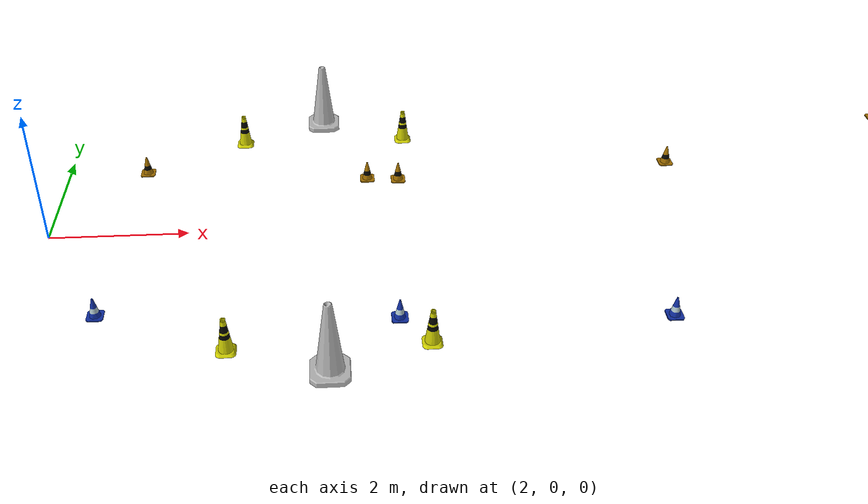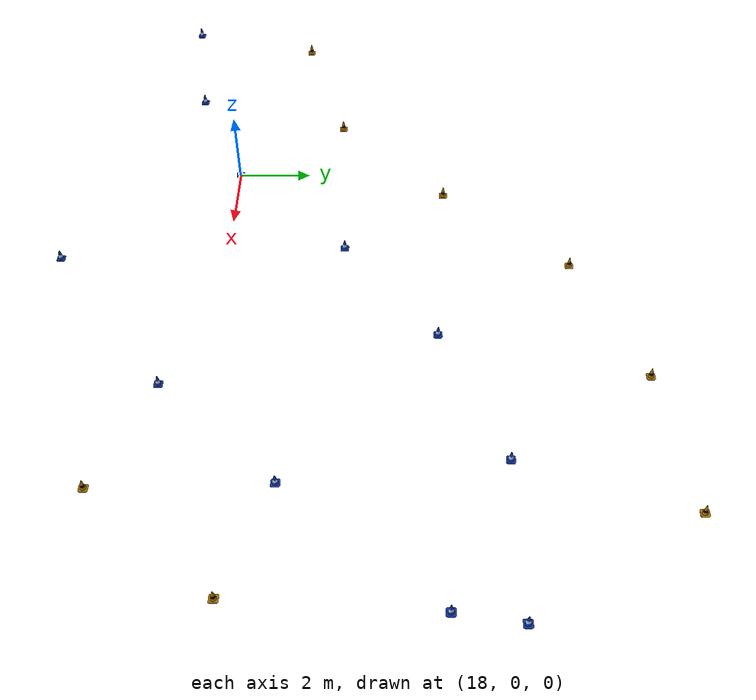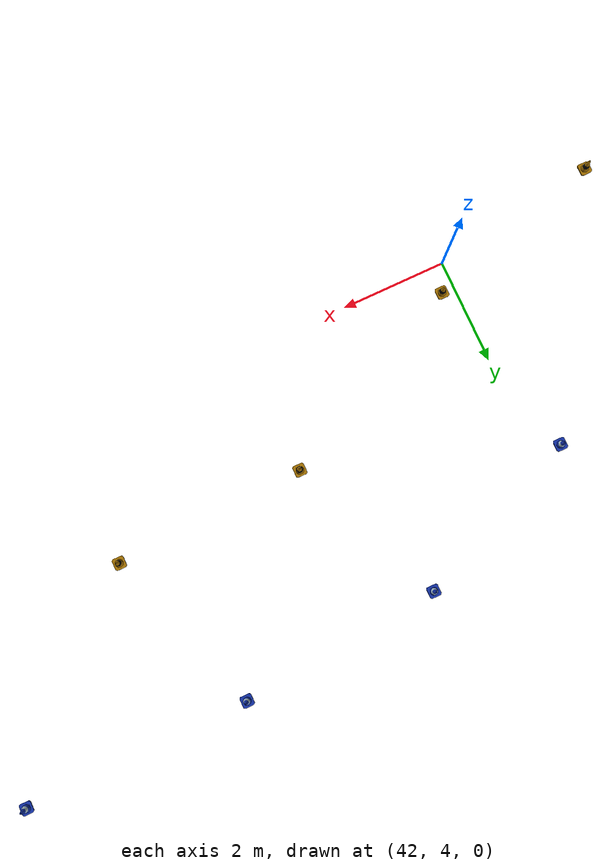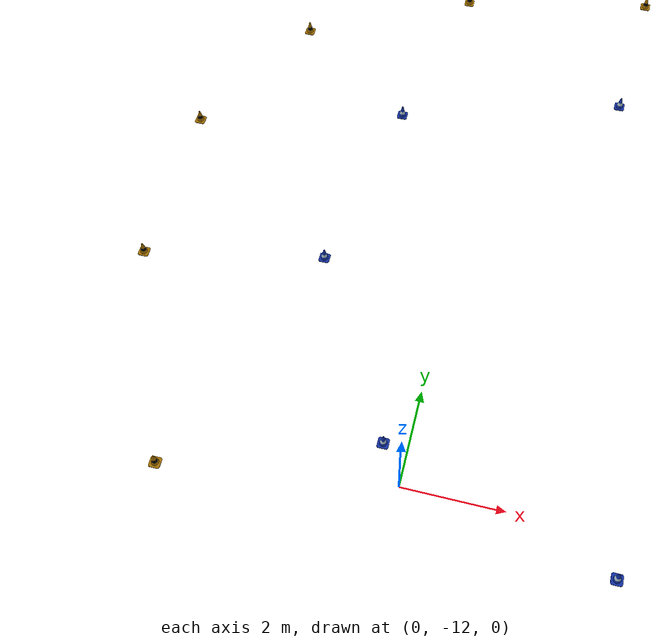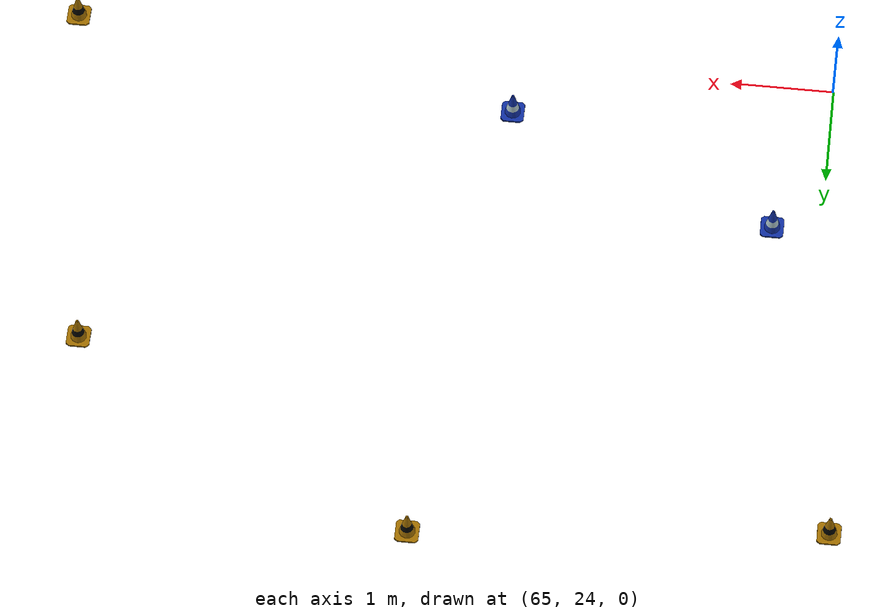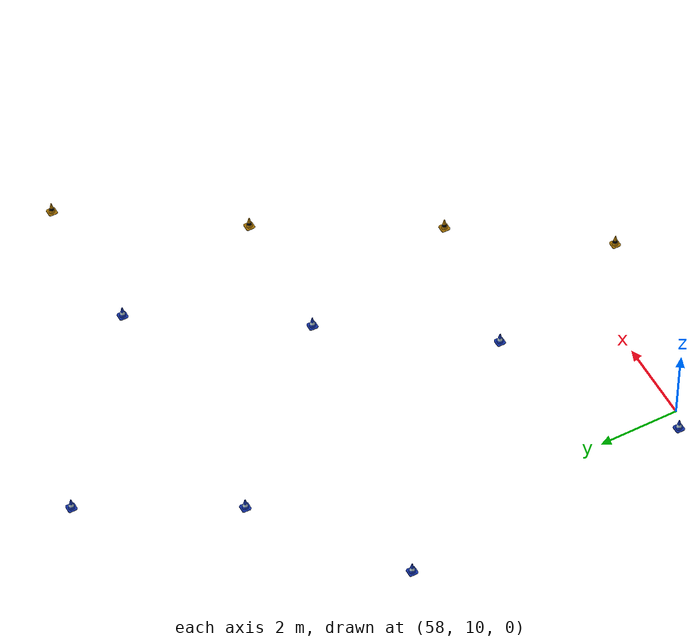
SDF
<?xml version='1.0' encoding='UTF-8'?>
<sdf version="1.4">
  <model name="some track">
    <include>
      <uri>model://fssim_gazebo/models/cone_blue</uri>
      <pose>2.90659856796 -1.59539604187 0 0 0 0</pose>
      <name>cone_right</name>
    </include>
    <include>
      <uri>model://fssim_gazebo/models/cone_blue</uri>
      <pose>6.93542385101 -1.87040793896 0 0 0 0</pose>
      <name>cone_right</name>
    </include>
    <include>
      <uri>model://fssim_gazebo/models/cone_blue</uri>
      <pose>10.5788793564 -2.04429888725 0 0 0 0</pose>
      <name>cone_right</name>
    </include>
    <include>
      <uri>model://fssim_gazebo/models/cone_blue</uri>
      <pose>14.2999448776 -1.4896812439 0 0 0 0</pose>
      <name>cone_right</name>
    </include>
    <include>
      <uri>model://fssim_gazebo/models/cone_blue</uri>
      <pose>17.8047637939 -0.0349008776248 0 0 0 0</pose>
      <name>cone_right</name>
    </include>
    <include>
      <uri>model://fssim_gazebo/models/cone_blue</uri>
      <pose>20.9232177734 3.14190459251 0 0 0 0</pose>
      <name>cone_right</name>
    </include>
    <include>
      <uri>model://fssim_gazebo/models/cone_blue</uri>
      <pose>24.1317501068 5.6552772522 0 0 0 0</pose>
      <name>cone_right</name>
    </include>
    <include>
      <uri>model://fssim_gazebo/models/cone_blue</uri>
      <pose>28.068151474 7.29581642151 0 0 0 0</pose>
      <name>cone_right</name>
    </include>
    <include>
      <uri>model://fssim_gazebo/models/cone_blue</uri>
      <pose>32.2912788391 7.40838336945 0 0 0 0</pose>
      <name>cone_right</name>
    </include>
    <include>
      <uri>model://fssim_gazebo/models/cone_blue</uri>
      <pose>35.0990066528 9.20966053009 0 0 0 0</pose>
      <name>cone_right</name>
    </include>
    <include>
      <uri>model://fssim_gazebo/models/cone_blue</uri>
      <pose>35.7737426758 11.7703428268 0 0 0 0</pose>
      <name>cone_right</name>
    </include>
    <include>
      <uri>model://fssim_gazebo/models/cone_blue</uri>
      <pose>36.224281311 13.8519067764 0 0 0 0</pose>
      <name>cone_right</name>
    </include>
    <include>
      <uri>model://fssim_gazebo/models/cone_blue</uri>
      <pose>37.9096946716 15.599653244 0 0 0 0</pose>
      <name>cone_right</name>
    </include>
    <include>
      <uri>model://fssim_gazebo/models/cone_blue</uri>
      <pose>41.3406791687 16.0946617126 0 0 0 0</pose>
      <name>cone_right</name>
    </include>
    <include>
      <uri>model://fssim_gazebo/models/cone_blue</uri>
      <pose>44.5591506958 15.3165016174 0 0 0 0</pose>
      <name>cone_right</name>
    </include>
    <include>
      <uri>model://fssim_gazebo/models/cone_blue</uri>
      <pose>48.5840263367 15.0294189453 0 0 0 0</pose>
      <name>cone_right</name>
    </include>
    <include>
      <uri>model://fssim_gazebo/models/cone_blue</uri>
      <pose>52.3199424744 15.7624044418 0 0 0 0</pose>
      <name>cone_right</name>
    </include>
    <include>
      <uri>model://fssim_gazebo/models/cone_blue</uri>
      <pose>57.0524406433 17.4541530609 0 0 0 0</pose>
      <name>cone_right</name>
    </include>
    <include>
      <uri>model://fssim_gazebo/models/cone_blue</uri>
      <pose>60.3937149048 19.9192619324 0 0 0 0</pose>
      <name>cone_right</name>
    </include>
    <include>
      <uri>model://fssim_gazebo/models/cone_blue</uri>
      <pose>62.2635536194 23.3804702759 0 0 0 0</pose>
      <name>cone_right</name>
    </include>
    <include>
      <uri>model://fssim_gazebo/models/cone_blue</uri>
      <pose>65.4728012085 25.489151001 0 0 0 0</pose>
      <name>cone_right</name>
    </include>
    <include>
      <uri>model://fssim_gazebo/models/cone_blue</uri>
      <pose>68.0783233643 24.4488449097 0 0 0 0</pose>
      <name>cone_right</name>
    </include>
    <include>
      <uri>model://fssim_gazebo/models/cone_blue</uri>
      <pose>66.6733169556 19.8882293701 0 0 0 0</pose>
      <name>cone_right</name>
    </include>
    <include>
      <uri>model://fssim_gazebo/models/cone_blue</uri>
      <pose>64.2880706787 16.121629715 0 0 0 0</pose>
      <name>cone_right</name>
    </include>
    <include>
      <uri>model://fssim_gazebo/models/cone_blue</uri>
      <pose>61.7876815796 12.5032634735 0 0 0 0</pose>
      <name>cone_right</name>
    </include>
    <include>
      <uri>model://fssim_gazebo/models/cone_blue</uri>
      <pose>57.6408729553 10.1374931335 0 0 0 0</pose>
      <name>cone_right</name>
    </include>
    <include>
      <uri>model://fssim_gazebo/models/cone_blue</uri>
      <pose>52.9737854004 9.87902736664 0 0 0 0</pose>
      <name>cone_right</name>
    </include>
    <include>
      <uri>model://fssim_gazebo/models/cone_blue</uri>
      <pose>48.6139640808 9.80177021027 0 0 0 0</pose>
      <name>cone_right</name>
    </include>
    <include>
      <uri>model://fssim_gazebo/models/cone_blue</uri>
      <pose>44.7110443115 9.42826461792 0 0 0 0</pose>
      <name>cone_right</name>
    </include>
    <include>
      <uri>model://fssim_gazebo/models/cone_blue</uri>
      <pose>41.4322967529 7.96463489532 0 0 0 0</pose>
      <name>cone_right</name>
    </include>
    <include>
      <uri>model://fssim_gazebo/models/cone_blue</uri>
      <pose>36.5077514648 7.12144422531 0 0 0 0</pose>
      <name>cone_right</name>
    </include>
    <include>
      <uri>model://fssim_gazebo/models/cone_blue</uri>
      <pose>32.0413475037 5.79926967621 0 0 0 0</pose>
      <name>cone_right</name>
    </include>
    <include>
      <uri>model://fssim_gazebo/models/cone_blue</uri>
      <pose>28.7814006805 1.8342615366 0 0 0 0</pose>
      <name>cone_right</name>
    </include>
    <include>
      <uri>model://fssim_gazebo/models/cone_blue</uri>
      <pose>25.8421459198 -1.29078412056 0 0 0 0</pose>
      <name>cone_right</name>
    </include>
    <include>
      <uri>model://fssim_gazebo/models/cone_blue</uri>
      <pose>21.3953151703 -4.5991435051 0 0 0 0</pose>
      <name>cone_right</name>
    </include>
    <include>
      <uri>model://fssim_gazebo/models/cone_blue</uri>
      <pose>16.7766971588 -7.83777999878 0 0 0 0</pose>
      <name>cone_right</name>
    </include>
    <include>
      <uri>model://fssim_gazebo/models/cone_blue</uri>
      <pose>12.1841411591 -10.3024635315 0 0 0 0</pose>
      <name>cone_right</name>
    </include>
    <include>
      <uri>model://fssim_gazebo/models/cone_blue</uri>
      <pose>8.11110687256 -12.2213640213 0 0 0 0</pose>
      <name>cone_right</name>
    </include>
    <include>
      <uri>model://fssim_gazebo/models/cone_blue</uri>
      <pose>4.11627101898 -12.7065258026 0 0 0 0</pose>
      <name>cone_right</name>
    </include>
    <include>
      <uri>model://fssim_gazebo/models/cone_blue</uri>
      <pose>-0.496038258076 -11.157207489 0 0 0 0</pose>
      <name>cone_right</name>
    </include>
    <include>
      <uri>model://fssim_gazebo/models/cone_blue</uri>
      <pose>-2.67893505096 -7.33066940308 0 0 0 0</pose>
      <name>cone_right</name>
    </include>
    <include>
      <uri>model://fssim_gazebo/models/cone_blue</uri>
      <pose>-1.95763456821 -3.05184483528 0 0 0 0</pose>
      <name>cone_right</name>
    </include>
    <include>
      <uri>model://fssim_gazebo/models/cone_blue</uri>
      <pose>2.90659856796 -1.59539604187 0 0 0 0</pose>
      <name>cone_right</name>
    </include>
    <include>
      <uri>model://fssim_gazebo/models/cone_yellow</uri>
      <pose>-6.46425533295 -4.28881835938 0 0 0 0</pose>
      <name>cone_left</name>
    </include>
    <include>
      <uri>model://fssim_gazebo/models/cone_yellow</uri>
      <pose>-4.76231861115 -0.929560542107 0 0 0 0</pose>
      <name>cone_left</name>
    </include>
    <include>
      <uri>model://fssim_gazebo/models/cone_yellow</uri>
      <pose>-1.14174294472 0.981109678745 0 0 0 0</pose>
      <name>cone_left</name>
    </include>
    <include>
      <uri>model://fssim_gazebo/models/cone_yellow</uri>
      <pose>3.16416501999 1.8828612566 0 0 0 0</pose>
      <name>cone_left</name>
    </include>
    <include>
      <uri>model://fssim_gazebo/models/cone_yellow</uri>
      <pose>6.66520643234 1.51348412037 0 0 0 0</pose>
      <name>cone_left</name>
    </include>
    <include>
      <uri>model://fssim_gazebo/models/cone_yellow</uri>
      <pose>7.15105247498 1.46177220345 0 0 0 0</pose>
      <name>cone_left</name>
    </include>
    <include>
      <uri>model://fssim_gazebo/models/cone_yellow</uri>
      <pose>11.5421304703 1.6994330883 0 0 0 0</pose>
      <name>cone_left</name>
    </include>
    <include>
      <uri>model://fssim_gazebo/models/cone_yellow</uri>
      <pose>15.6056194305 2.90585255623 0 0 0 0</pose>
      <name>cone_left</name>
    </include>
    <include>
      <uri>model://fssim_gazebo/models/cone_yellow</uri>
      <pose>18.6863002777 5.88584423065 0 0 0 0</pose>
      <name>cone_left</name>
    </include>
    <include>
      <uri>model://fssim_gazebo/models/cone_yellow</uri>
      <pose>21.5557575226 9.25147342682 0 0 0 0</pose>
      <name>cone_left</name>
    </include>
    <include>
      <uri>model://fssim_gazebo/models/cone_yellow</uri>
      <pose>25.4816989899 10.9253931046 0 0 0 0</pose>
      <name>cone_left</name>
    </include>
    <include>
      <uri>model://fssim_gazebo/models/cone_yellow</uri>
      <pose>29.5118083954 11.5768108368 0 0 0 0</pose>
      <name>cone_left</name>
    </include>
    <include>
      <uri>model://fssim_gazebo/models/cone_yellow</uri>
      <pose>31.3762245178 15.2819404602 0 0 0 0</pose>
      <name>cone_left</name>
    </include>
    <include>
      <uri>model://fssim_gazebo/models/cone_yellow</uri>
      <pose>34.24766922 18.098367691 0 0 0 0</pose>
      <name>cone_left</name>
    </include>
    <include>
      <uri>model://fssim_gazebo/models/cone_yellow</uri>
      <pose>37.5619049072 19.4125785828 0 0 0 0</pose>
      <name>cone_left</name>
    </include>
    <include>
      <uri>model://fssim_gazebo/models/cone_yellow</uri>
      <pose>40.5535926819 20.1001815796 0 0 0 0</pose>
      <name>cone_left</name>
    </include>
    <include>
      <uri>model://fssim_gazebo/models/cone_yellow</uri>
      <pose>47.1841926575 19.3492393494 0 0 0 0</pose>
      <name>cone_left</name>
    </include>
    <include>
      <uri>model://fssim_gazebo/models/cone_yellow</uri>
      <pose>51.4372062683 18.9733257294 0 0 0 0</pose>
      <name>cone_left</name>
    </include>
    <include>
      <uri>model://fssim_gazebo/models/cone_yellow</uri>
      <pose>54.4731292725 20.6224937439 0 0 0 0</pose>
      <name>cone_left</name>
    </include>
    <include>
      <uri>model://fssim_gazebo/models/cone_yellow</uri>
      <pose>57.7830734253 23.909280777 0 0 0 0</pose>
      <name>cone_left</name>
    </include>
    <include>
      <uri>model://fssim_gazebo/models/cone_yellow</uri>
      <pose>61.1388893127 26.9981975555 0 0 0 0</pose>
      <name>cone_left</name>
    </include>
    <include>
      <uri>model://fssim_gazebo/models/cone_yellow</uri>
      <pose>64.6906661987 28.7485103607 0 0 0 0</pose>
      <name>cone_left</name>
    </include>
    <include>
      <uri>model://fssim_gazebo/models/cone_yellow</uri>
      <pose>68.5981292725 29.1311893463 0 0 0 0</pose>
      <name>cone_left</name>
    </include>
    <include>
      <uri>model://fssim_gazebo/models/cone_yellow</uri>
      <pose>71.927406311 27.3741207123 0 0 0 0</pose>
      <name>cone_left</name>
    </include>
    <include>
      <uri>model://fssim_gazebo/models/cone_yellow</uri>
      <pose>72.4230728149 23.7751407623 0 0 0 0</pose>
      <name>cone_left</name>
    </include>
    <include>
      <uri>model://fssim_gazebo/models/cone_yellow</uri>
      <pose>70.3138427734 19.9581317902 0 0 0 0</pose>
      <name>cone_left</name>
    </include>
    <include>
      <uri>model://fssim_gazebo/models/cone_yellow</uri>
      <pose>67.6724777222 16.0202598572 0 0 0 0</pose>
      <name>cone_left</name>
    </include>
    <include>
      <uri>model://fssim_gazebo/models/cone_yellow</uri>
      <pose>65.4148330688 11.9626913071 0 0 0 0</pose>
      <name>cone_left</name>
    </include>
    <include>
      <uri>model://fssim_gazebo/models/cone_yellow</uri>
      <pose>63.0458679199 8.64465522766 0 0 0 0</pose>
      <name>cone_left</name>
    </include>
    <include>
      <uri>model://fssim_gazebo/models/cone_yellow</uri>
      <pose>58.546207428 7.09893608093 0 0 0 0</pose>
      <name>cone_left</name>
    </include>
    <include>
      <uri>model://fssim_gazebo/models/cone_yellow</uri>
      <pose>54.0923347473 6.99156188965 0 0 0 0</pose>
      <name>cone_left</name>
    </include>
    <include>
      <uri>model://fssim_gazebo/models/cone_yellow</uri>
      <pose>49.7193183899 6.56945419312 0 0 0 0</pose>
      <name>cone_left</name>
    </include>
    <include>
      <uri>model://fssim_gazebo/models/cone_yellow</uri>
      <pose>46.0105133057 6.39041376114 0 0 0 0</pose>
      <name>cone_left</name>
    </include>
    <include>
      <uri>model://fssim_gazebo/models/cone_yellow</uri>
      <pose>42.1953277588 4.45663261414 0 0 0 0</pose>
      <name>cone_left</name>
    </include>
    <include>
      <uri>model://fssim_gazebo/models/cone_yellow</uri>
      <pose>38.7082443237 3.411911726 0 0 0 0</pose>
      <name>cone_left</name>
    </include>
    <include>
      <uri>model://fssim_gazebo/models/cone_yellow</uri>
      <pose>35.282787323 3.27148103714 0 0 0 0</pose>
      <name>cone_left</name>
    </include>
    <include>
      <uri>model://fssim_gazebo/models/cone_yellow</uri>
      <pose>31.770488739 0.752994716167 0 0 0 0</pose>
      <name>cone_left</name>
    </include>
    <include>
      <uri>model://fssim_gazebo/models/cone_yellow</uri>
      <pose>28.9616279602 -2.55838656425 0 0 0 0</pose>
      <name>cone_left</name>
    </include>
    <include>
      <uri>model://fssim_gazebo/models/cone_yellow</uri>
      <pose>25.7906589508 -5.56458282471 0 0 0 0</pose>
      <name>cone_left</name>
    </include>
    <include>
      <uri>model://fssim_gazebo/models/cone_yellow</uri>
      <pose>22.4257049561 -8.0656709671 0 0 0 0</pose>
      <name>cone_left</name>
    </include>
    <include>
      <uri>model://fssim_gazebo/models/cone_yellow</uri>
      <pose>17.8923625946 -10.6450557709 0 0 0 0</pose>
      <name>cone_left</name>
    </include>
    <include>
      <uri>model://fssim_gazebo/models/cone_yellow</uri>
      <pose>13.393204689 -13.4490146637 0 0 0 0</pose>
      <name>cone_left</name>
    </include>
    <include>
      <uri>model://fssim_gazebo/models/cone_yellow</uri>
      <pose>8.81002807617 -15.9564123154 0 0 0 0</pose>
      <name>cone_left</name>
    </include>
    <include>
      <uri>model://fssim_gazebo/models/cone_yellow</uri>
      <pose>3.22123098373 -16.4096088409 0 0 0 0</pose>
      <name>cone_left</name>
    </include>
    <include>
      <uri>model://fssim_gazebo/models/cone_yellow</uri>
      <pose>-1.16415345669 -15.4882297516 0 0 0 0</pose>
      <name>cone_left</name>
    </include>
    <include>
      <uri>model://fssim_gazebo/models/cone_yellow</uri>
      <pose>-4.57258939743 -12.5520324707 0 0 0 0</pose>
      <name>cone_left</name>
    </include>
    <include>
      <uri>model://fssim_gazebo/models/cone_yellow</uri>
      <pose>-6.44857358932 -8.08112716675 0 0 0 0</pose>
      <name>cone_left</name>
    </include>
    <include>
      <uri>model://fssim_gazebo/models/cone_orange_big</uri>
      <pose>4.7 2.5 0 0 0 0</pose>
      <name>cone_orange_big</name>
    </include>
    <include>
      <uri>model://fssim_gazebo/models/cone_orange_big</uri>
      <pose>4.7 -2.5 0 0 0 0</pose>
      <name>cone_orange_big</name>
    </include>
    <include>
      <uri>model://fssim_gazebo/models/cone_orange_big</uri>
      <pose>7.3 2.5 0 0 0 0</pose>
      <name>cone_orange_big</name>
    </include>
    <include>
      <uri>model://fssim_gazebo/models/cone_orange_big</uri>
      <pose>7.3 -2.5 0 0 0 0</pose>
      <name>cone_orange_big</name>
    </include>
    <include>
      <uri>model://fssim_gazebo/models/time_keeping</uri>
      <pose>6.0 3.0 0 0 0 0</pose>
      <name>tk_device_0</name>
    </include>
    <include>
      <uri>model://fssim_gazebo/models/time_keeping</uri>
      <pose>6.0 -3.0 0 0 0 0</pose>
      <name>tk_device_1</name>
    </include>
  </model>
</sdf>

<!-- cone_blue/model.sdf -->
<sdf version='1.4'>
  <model name="cone_blue">
    <link name="link">
      <collision name="collision">
        <geometry>
          <mesh>
            <uri>model://fssim_gazebo/meshes/cone/cone_blue.dae</uri>
     	      <scale>1 1 1</scale>
          </mesh>
        </geometry>
      </collision>
      <visual name="visual">
        <geometry>
          <mesh>
            <uri>model://fssim_gazebo/meshes/cone/cone_blue.dae</uri>
            <scale>1 1 1</scale>
          </mesh>
        </geometry>
      </visual>
    </link>
  </model>
</sdf>

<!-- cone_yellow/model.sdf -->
<sdf version='1.4'>
  <model name="cone_yellow">
    <link name="link">
      <collision name="collision">
        <geometry>
          <mesh>
            <uri>model://fssim_gazebo/meshes/cone/cone_yellow.dae</uri>
     	      <scale>1 1 1</scale>
          </mesh>
        </geometry>
      </collision>
      <visual name="visual">
        <geometry>
          <mesh>
            <uri>model://fssim_gazebo/meshes/cone/cone_yellow.dae</uri>
            <scale>1 1 1</scale>
          </mesh>
        </geometry>
      </visual>
    </link>
  </model>
</sdf>

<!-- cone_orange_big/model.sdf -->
<sdf version='1.4'>
  <model name="cone_orange_big">
    <link name="link">
      <collision name="collision">
        <geometry>
          <mesh>
            <uri>model://fssim_gazebo/meshes/cone/cone_orange_big.dae</uri>
     	      <scale>1 1 1</scale>
          </mesh>
        </geometry>
      </collision>
      <visual name="visual">
        <geometry>
          <mesh>
            <uri>model://fssim_gazebo/meshes/cone/cone_orange_big.dae</uri>
            <scale>1 1 1</scale>
          </mesh>
        </geometry>
      </visual>
    </link>
  </model>
</sdf>

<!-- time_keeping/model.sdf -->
<sdf version="1.5">
  <model name="Time Keeping Device">
    <link name="link">
      <collision name="collision">
        <geometry>
          <mesh>
            <scale>10 10 10</scale>
            <uri>model://construction_cone/meshes/construction_cone.dae</uri>
          </mesh>
        </geometry>
      </collision>
      <visual name="visual">
        <geometry>
          <mesh>
            <scale>10 10 10</scale>
            <uri>model://construction_cone/meshes/construction_cone.dae</uri>
          </mesh>
        </geometry>
      </visual>
    </link>
  </model>
</sdf>
